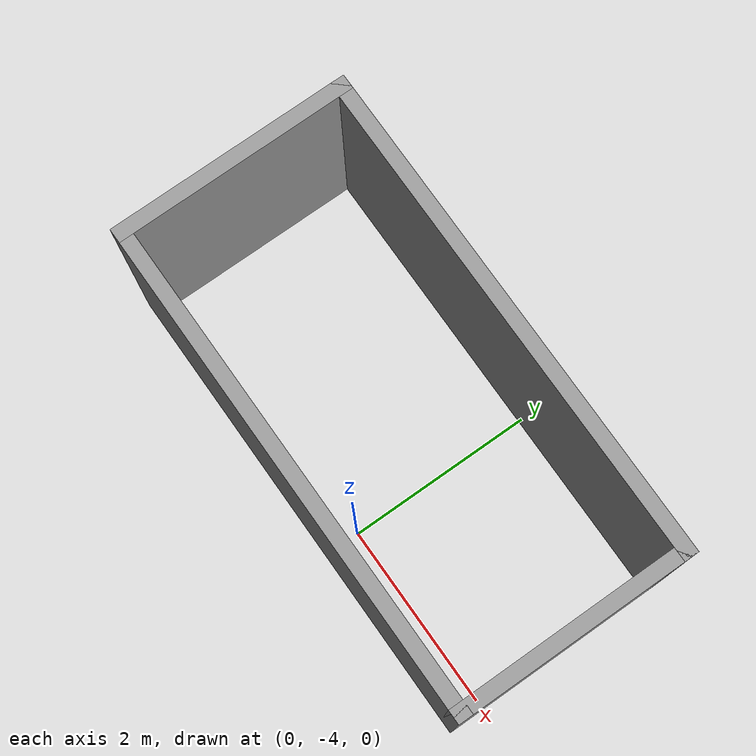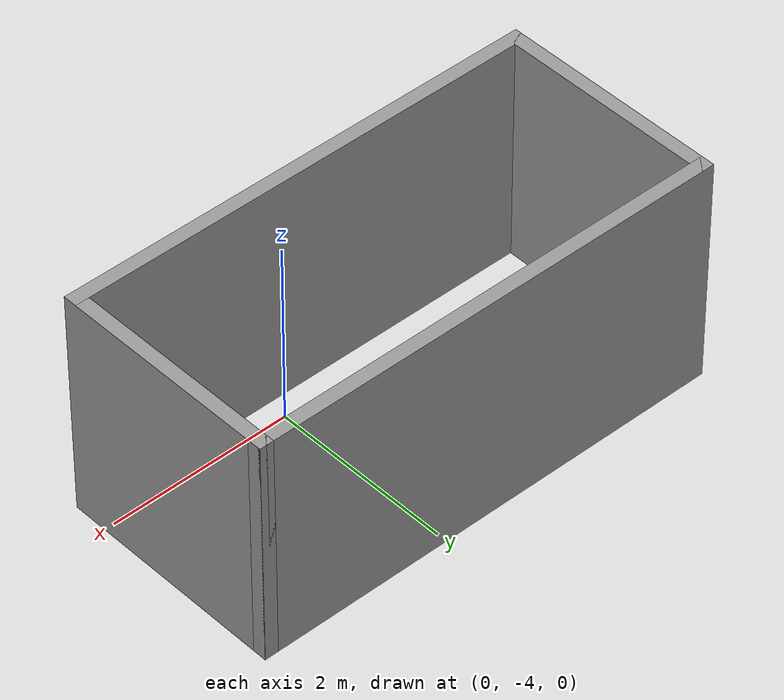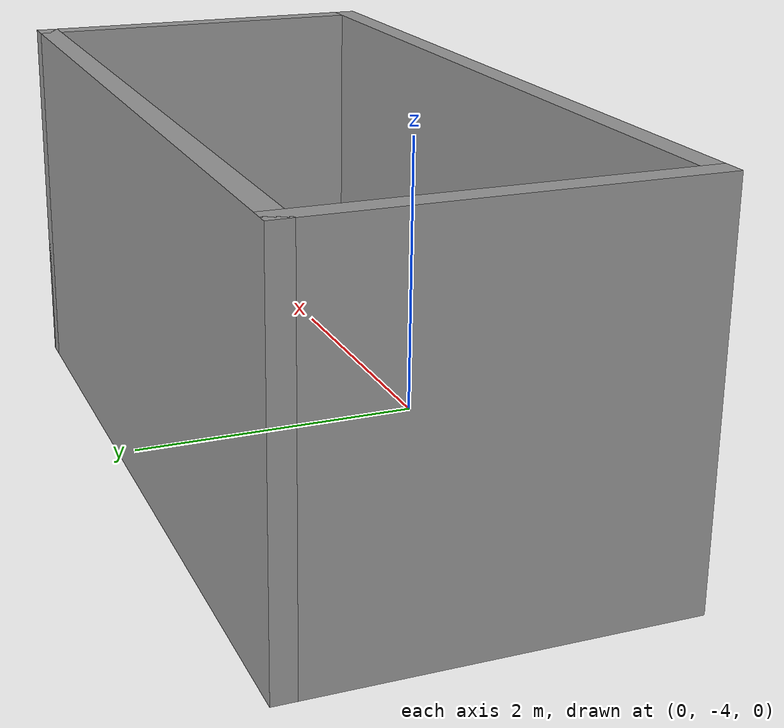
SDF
<?xml version='1.0'?>
<sdf version='1.7'>
  <model name='box.models'>
    <pose>-0.52 -2.1925 0 0 -0 0</pose>
    <link name='Wall_0'>
      <collision name='Wall_0_Collision'>
        <geometry>
          <box>
            <size>5.25 0.15 2.5</size>
          </box>
        </geometry>
        <pose>0 0 1.25 0 -0 0</pose>
      </collision>
      <visual name='Wall_0_Visual'>
        <pose>0 0 1.25 0 -0 0</pose>
        <geometry>
          <box>
            <size>5.25 0.15 2.5</size>
          </box>
        </geometry>
        <material>
          <script>
            <uri>file://media/materials/scripts/gazebo.material</uri>
            <name>Gazebo/Grey</name>
          </script>
          <ambient>1 1 1 1</ambient>
        </material>
        <meta>
          <layer>0</layer>
        </meta>
      </visual>
      <pose>0 0.2325 0 0 -0 3.14159</pose>
    </link>
    <link name='Wall_1'>
      <collision name='Wall_1_Collision'>
        <geometry>
          <box>
            <size>2.5 0.15 2.5</size>
          </box>
        </geometry>
        <pose>0 0 1.25 0 -0 0</pose>
      </collision>
      <visual name='Wall_1_Visual'>
        <pose>0 0 1.25 0 -0 0</pose>
        <geometry>
          <box>
            <size>2.5 0.15 2.5</size>
          </box>
        </geometry>
        <material>
          <script>
            <uri>file://media/materials/scripts/gazebo.material</uri>
            <name>Gazebo/Grey</name>
          </script>
          <ambient>1 1 1 1</ambient>
        </material>
        <meta>
          <layer>0</layer>
        </meta>
      </visual>
      <pose>-2.55 -0.9425 0 0 -0 -1.5708</pose>
    </link>
    <link name='Wall_2'>
      <collision name='Wall_2_Collision'>
        <geometry>
          <box>
            <size>5.25 0.15 2.5</size>
          </box>
        </geometry>
        <pose>0 0 1.25 0 -0 0</pose>
      </collision>
      <visual name='Wall_2_Visual'>
        <pose>0 0 1.25 0 -0 0</pose>
        <geometry>
          <box>
            <size>5.25 0.15 2.5</size>
          </box>
        </geometry>
        <material>
          <script>
            <uri>file://media/materials/scripts/gazebo.material</uri>
            <name>Gazebo/Grey</name>
          </script>
          <ambient>1 1 1 1</ambient>
        </material>
        <meta>
          <layer>0</layer>
        </meta>
      </visual>
      <pose>0 -2.1175 0 0 -0 0</pose>
    </link>
    <link name='Wall_3'>
      <collision name='Wall_3_Collision'>
        <geometry>
          <box>
            <size>2.5 0.15 2.5</size>
          </box>
        </geometry>
        <pose>0 0 1.25 0 -0 0</pose>
      </collision>
      <visual name='Wall_3_Visual'>
        <pose>0 0 1.25 0 -0 0</pose>
        <geometry>
          <box>
            <size>2.5 0.15 2.5</size>
          </box>
        </geometry>
        <material>
          <script>
            <uri>file://media/materials/scripts/gazebo.material</uri>
            <name>Gazebo/Grey</name>
          </script>
          <ambient>1 1 1 1</ambient>
        </material>
        <meta>
          <layer>0</layer>
        </meta>
      </visual>
      <pose>2.55 -0.9425 0 0 -0 1.5708</pose>
    </link>
    <link name='Wall_4'>
      <collision name='Wall_4_Collision'>
        <geometry>
          <box>
            <size>0.15 0.15 2.5</size>
          </box>
        </geometry>
        <pose>0 0 1.25 0 -0 0</pose>
      </collision>
      <visual name='Wall_4_Visual'>
        <pose>0 0 1.25 0 -0 0</pose>
        <geometry>
          <box>
            <size>0.15 0.15 2.5</size>
          </box>
        </geometry>
        <material>
          <script>
            <uri>file://media/materials/scripts/gazebo.material</uri>
            <name>Gazebo/Grey</name>
          </script>
          <ambient>1 1 1 1</ambient>
        </material>
        <meta>
          <layer>0</layer>
        </meta>
      </visual>
      <pose>2.55 0.2325 0 0 -0 0</pose>
    </link>
    <static>1</static>
  </model>
</sdf>
